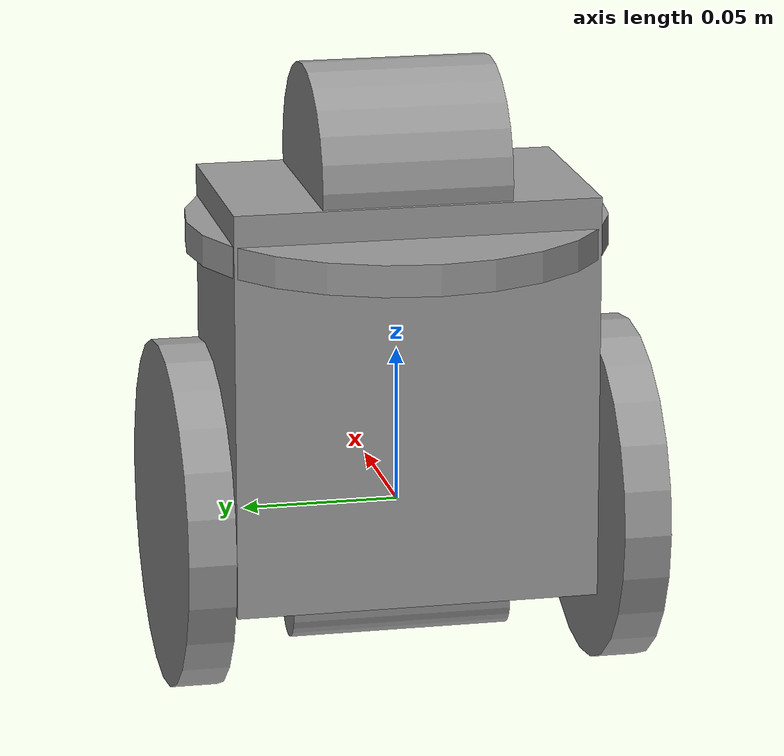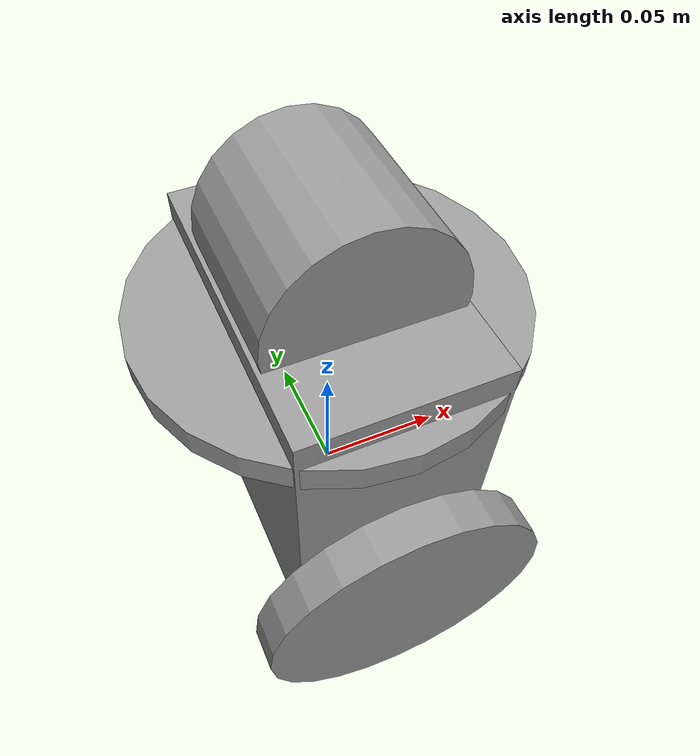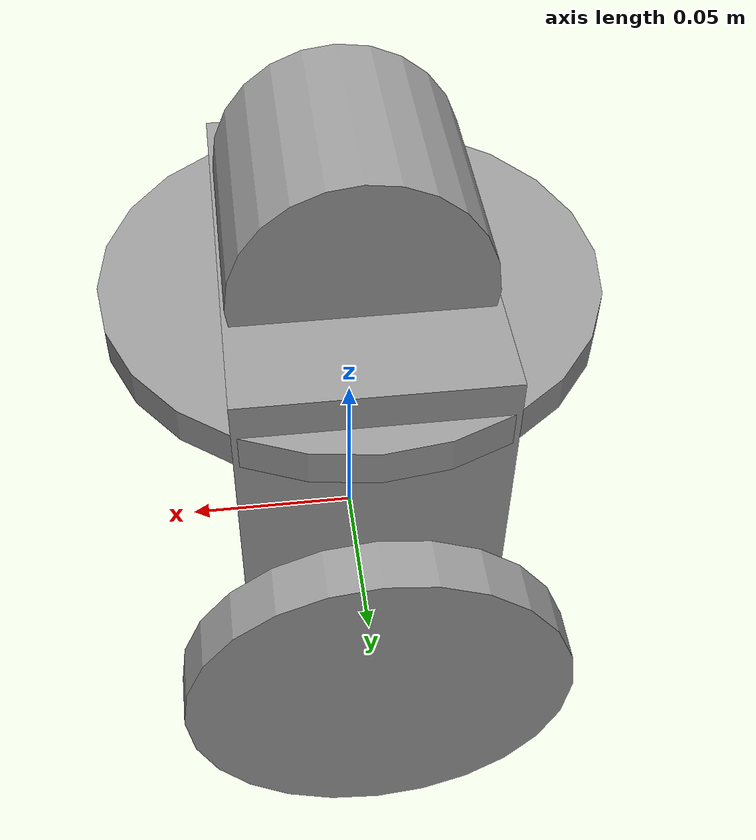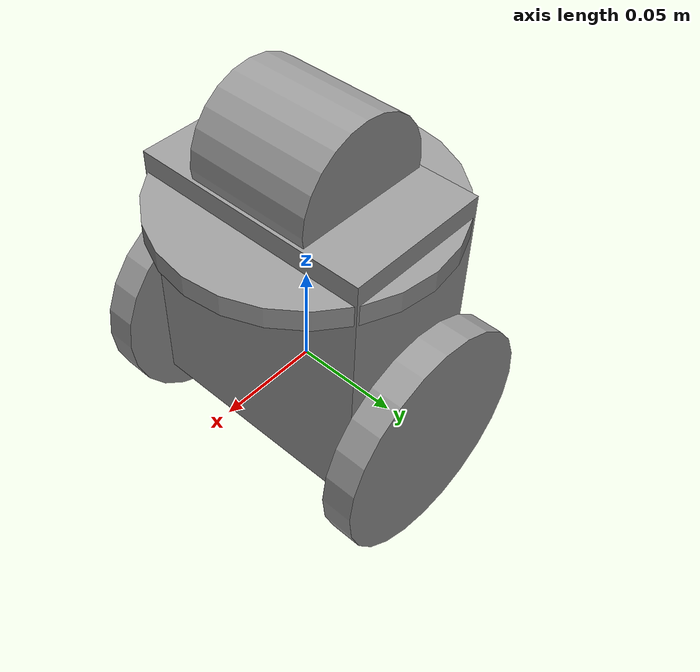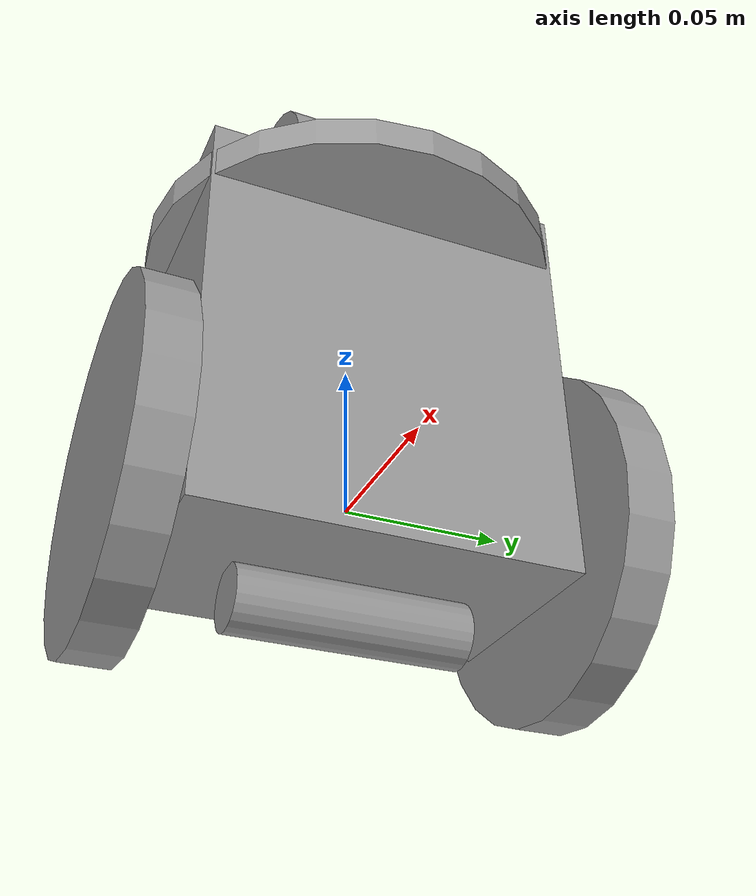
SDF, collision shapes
<?xml version='1.0'?>
<sdf version='1.7'>
  <model name='MiniRys4_2'>
    <link name='body'>
      <inertial>
        <mass>1.16182</mass>
        <inertia>
          <ixx>0.002939</ixx>
          <ixy>0</ixy>
          <ixz>0</ixz>
          <iyy>0.00211063</iyy>
          <iyz>0</iyz>
          <izz>0.00177719</izz>
        </inertia>
        <pose>0 0.000109 0.011152 0 -0 0</pose>
      </inertial>
      <pose>0 0 0 0 -0 0</pose>
      <gravity>1</gravity>
      <self_collide>0</self_collide>
      <kinematic>0</kinematic>
      <enable_wind>0</enable_wind>
      <visual name='visual'>
        <pose>-0.017 0 0 0 -0 0</pose>
        <geometry>
          <mesh>
            <uri>/home/mathew/ROS_files/meshes/body.stl</uri>
          </mesh>
        </geometry>
        <material>
          <lighting>1</lighting>
          <script>
            <uri>file://media/materials/scripts/gazebo.material</uri>
            <name>Gazebo/Grey</name>
          </script>
          <shader type='pixel'>
            <normal_map>__default__</normal_map>
          </shader>
          <ambient>0.3 0.3 0.3 1</ambient>
          <diffuse>0.7 0.7 0.7 1</diffuse>
          <specular>0.01 0.01 0.01 1</specular>
          <emissive>0 0 0 1</emissive>
        </material>
        <transparency>0</transparency>
        <cast_shadows>1</cast_shadows>
      </visual>
      <collision name='collision_2'>
        <laser_retro>0</laser_retro>
        <max_contacts>10</max_contacts>
        <pose>0 0 0.04 0 -0 0</pose>
        <geometry>
          <box>
            <size>0.07 0.116 0.13</size>
          </box>
        </geometry>
        <surface>
          <friction>
            <ode>
              <mu>0.1</mu>
              <mu2>0.1</mu2>
              <fdir1>0 0 0</fdir1>
              <slip1>0</slip1>
              <slip2>0</slip2>
            </ode>
            <torsional>
              <coefficient>1</coefficient>
              <patch_radius>0</patch_radius>
              <surface_radius>0</surface_radius>
              <use_patch_radius>1</use_patch_radius>
              <ode>
                <slip>0</slip>
              </ode>
            </torsional>
          </friction>
          <bounce>
            <restitution_coefficient>0</restitution_coefficient>
            <threshold>1e+06</threshold>
          </bounce>
          <contact>
            <collide_without_contact>0</collide_without_contact>
            <collide_without_contact_bitmask>1</collide_without_contact_bitmask>
            <collide_bitmask>1</collide_bitmask>
            <ode>
              <soft_cfm>0</soft_cfm>
              <soft_erp>0.2</soft_erp>
              <kp>1e+13</kp>
              <kd>1</kd>
              <max_vel>0.01</max_vel>
              <min_depth>0</min_depth>
            </ode>
            <bullet>
              <split_impulse>1</split_impulse>
              <split_impulse_penetration_threshold>-0.01</split_impulse_penetration_threshold>
              <soft_cfm>0</soft_cfm>
              <soft_erp>0.2</soft_erp>
              <kp>1e+13</kp>
              <kd>1</kd>
            </bullet>
          </contact>
        </surface>
      </collision>
      <collision name='collision_4'>
        <laser_retro>0</laser_retro>
        <max_contacts>10</max_contacts>
        <pose>0 0 0.09 0 -0 0</pose>
        <geometry>
          <cylinder>
            <radius>0.067</radius>
            <length>0.01</length>
          </cylinder>
        </geometry>
        <surface>
          <friction>
            <ode>
              <mu>0.1</mu>
              <mu2>0.1</mu2>
              <fdir1>0 0 0</fdir1>
              <slip1>0</slip1>
              <slip2>0</slip2>
            </ode>
            <torsional>
              <coefficient>1</coefficient>
              <patch_radius>0</patch_radius>
              <surface_radius>0</surface_radius>
              <use_patch_radius>1</use_patch_radius>
              <ode>
                <slip>0</slip>
              </ode>
            </torsional>
          </friction>
          <bounce>
            <restitution_coefficient>0</restitution_coefficient>
            <threshold>1e+06</threshold>
          </bounce>
          <contact>
            <collide_without_contact>0</collide_without_contact>
            <collide_without_contact_bitmask>1</collide_without_contact_bitmask>
            <collide_bitmask>1</collide_bitmask>
            <ode>
              <soft_cfm>0</soft_cfm>
              <soft_erp>0.2</soft_erp>
              <kp>1e+13</kp>
              <kd>1</kd>
              <max_vel>0.01</max_vel>
              <min_depth>0</min_depth>
            </ode>
            <bullet>
              <split_impulse>1</split_impulse>
              <split_impulse_penetration_threshold>-0.01</split_impulse_penetration_threshold>
              <soft_cfm>0</soft_cfm>
              <soft_erp>0.2</soft_erp>
              <kp>1e+13</kp>
              <kd>1</kd>
            </bullet>
          </contact>
        </surface>
      </collision>
      <collision name='collision_5'>
        <laser_retro>0</laser_retro>
        <max_contacts>10</max_contacts>
        <pose>0 0 -0.034 1.5708 -0 0</pose>
        <geometry>
          <cylinder>
            <radius>0.01</radius>
            <length>0.071</length>
          </cylinder>
        </geometry>
        <surface>
          <friction>
            <ode>
              <mu>0.1</mu>
              <mu2>0.1</mu2>
              <fdir1>0 0 0</fdir1>
              <slip1>0</slip1>
              <slip2>0</slip2>
            </ode>
            <torsional>
              <coefficient>1</coefficient>
              <patch_radius>0</patch_radius>
              <surface_radius>0</surface_radius>
              <use_patch_radius>1</use_patch_radius>
              <ode>
                <slip>0</slip>
              </ode>
            </torsional>
          </friction>
          <bounce>
            <restitution_coefficient>0</restitution_coefficient>
            <threshold>1e+06</threshold>
          </bounce>
          <contact>
            <collide_without_contact>0</collide_without_contact>
            <collide_without_contact_bitmask>1</collide_without_contact_bitmask>
            <collide_bitmask>1</collide_bitmask>
            <ode>
              <soft_cfm>0</soft_cfm>
              <soft_erp>0.2</soft_erp>
              <kp>1e+13</kp>
              <kd>1</kd>
              <max_vel>0.01</max_vel>
              <min_depth>0</min_depth>
            </ode>
            <bullet>
              <split_impulse>1</split_impulse>
              <split_impulse_penetration_threshold>-0.01</split_impulse_penetration_threshold>
              <soft_cfm>0</soft_cfm>
              <soft_erp>0.2</soft_erp>
              <kp>1e+13</kp>
              <kd>1</kd>
            </bullet>
          </contact>
        </surface>
      </collision>
      <collision name='collision_3'>
        <laser_retro>0</laser_retro>
        <max_contacts>10</max_contacts>
        <pose>0 0 0.11 1.5708 -0 0</pose>
        <geometry>
          <cylinder>
            <radius>0.034</radius>
            <length>0.06</length>
          </cylinder>
        </geometry>
        <surface>
          <friction>
            <ode>
              <mu>0.1</mu>
              <mu2>0.1</mu2>
              <fdir1>0 0 0</fdir1>
              <slip1>0</slip1>
              <slip2>0</slip2>
            </ode>
            <torsional>
              <coefficient>1</coefficient>
              <patch_radius>0</patch_radius>
              <surface_radius>0</surface_radius>
              <use_patch_radius>1</use_patch_radius>
              <ode>
                <slip>0</slip>
              </ode>
            </torsional>
          </friction>
          <bounce>
            <restitution_coefficient>0</restitution_coefficient>
            <threshold>1e+06</threshold>
          </bounce>
          <contact>
            <collide_without_contact>0</collide_without_contact>
            <collide_without_contact_bitmask>1</collide_without_contact_bitmask>
            <collide_bitmask>1</collide_bitmask>
            <ode>
              <soft_cfm>0</soft_cfm>
              <soft_erp>0.2</soft_erp>
              <kp>1e+13</kp>
              <kd>1</kd>
              <max_vel>0.01</max_vel>
              <min_depth>0</min_depth>
            </ode>
            <bullet>
              <split_impulse>1</split_impulse>
              <split_impulse_penetration_threshold>-0.01</split_impulse_penetration_threshold>
              <soft_cfm>0</soft_cfm>
              <soft_erp>0.2</soft_erp>
              <kp>1e+13</kp>
              <kd>1</kd>
            </bullet>
          </contact>
        </surface>
      </collision>
    </link>
    <link name='leftwheel'>
      <inertial>
        <mass>0.170328</mass>
        <inertia>
          <ixx>0.00013418</ixx>
          <ixy>0</ixy>
          <ixz>0</ixz>
          <iyy>0.00013418</iyy>
          <iyz>0</iyz>
          <izz>0.00026198</izz>
        </inertia>
        <pose>0 0 0 0 -0 0</pose>
      </inertial>
      <pose>0 0.069 0 0 -0 0</pose>
      <gravity>1</gravity>
      <self_collide>0</self_collide>
      <kinematic>0</kinematic>
      <enable_wind>0</enable_wind>
      <visual name='visual'>
        <pose>-0.055463 -0.005 -0.055463 0 -0 0</pose>
        <geometry>
          <mesh>
            <uri>/home/mathew/ROS_files/meshes/rimtire.STL</uri>
          </mesh>
        </geometry>
        <material>
          <lighting>1</lighting>
          <script>
            <uri>file://media/materials/scripts/gazebo.material</uri>
            <name>Gazebo/Grey</name>
          </script>
          <shader type='pixel'>
            <normal_map>__default__</normal_map>
          </shader>
          <ambient>0.3 0.3 0.3 1</ambient>
          <diffuse>0.7 0.7 0.7 1</diffuse>
          <specular>0.01 0.01 0.01 1</specular>
          <emissive>0 0 0 1</emissive>
        </material>
        <transparency>0</transparency>
        <cast_shadows>1</cast_shadows>
      </visual>
      <collision name='collision_2'>
        <laser_retro>0</laser_retro>
        <max_contacts>10</max_contacts>
        <pose>0 0 0 1.5708 -0 0</pose>
        <geometry>
          <cylinder>
            <radius>0.055463</radius>
            <length>0.015</length>
          </cylinder>
        </geometry>
        <surface>
          <friction>
            <ode>
              <mu>1</mu>
              <mu2>1</mu2>
              <fdir1>0 0 0</fdir1>
              <slip1>0</slip1>
              <slip2>0</slip2>
            </ode>
            <torsional>
              <coefficient>1</coefficient>
              <patch_radius>0</patch_radius>
              <surface_radius>0</surface_radius>
              <use_patch_radius>1</use_patch_radius>
              <ode>
                <slip>0</slip>
              </ode>
            </torsional>
          </friction>
          <bounce>
            <restitution_coefficient>0</restitution_coefficient>
            <threshold>1e+06</threshold>
          </bounce>
          <contact>
            <collide_without_contact>0</collide_without_contact>
            <collide_without_contact_bitmask>1</collide_without_contact_bitmask>
            <collide_bitmask>1</collide_bitmask>
            <ode>
              <soft_cfm>0</soft_cfm>
              <soft_erp>0.2</soft_erp>
              <kp>1e+13</kp>
              <kd>1</kd>
              <max_vel>0.01</max_vel>
              <min_depth>0</min_depth>
            </ode>
            <bullet>
              <split_impulse>1</split_impulse>
              <split_impulse_penetration_threshold>-0.01</split_impulse_penetration_threshold>
              <soft_cfm>0</soft_cfm>
              <soft_erp>0.2</soft_erp>
              <kp>1e+13</kp>
              <kd>1</kd>
            </bullet>
          </contact>
        </surface>
      </collision>
    </link>
    <link name='rightwheel'>
      <inertial>
        <mass>0.170328</mass>
        <inertia>
          <ixx>0.00013418</ixx>
          <ixy>0</ixy>
          <ixz>0</ixz>
          <iyy>0.00013418</iyy>
          <iyz>0</iyz>
          <izz>0.00026198</izz>
        </inertia>
        <pose>0 0 0 0 -0 0</pose>
      </inertial>
      <pose>0 -0.069 0 0 -0 0</pose>
      <gravity>1</gravity>
      <self_collide>0</self_collide>
      <kinematic>0</kinematic>
      <enable_wind>0</enable_wind>
      <visual name='visual'>
        <pose>0.055463 0.005 -0.055463 0 -0 3.14159</pose>
        <geometry>
          <mesh>
            <uri>/home/mathew/ROS_files/meshes/rimtire.STL</uri>
          </mesh>
        </geometry>
        <material>
          <lighting>1</lighting>
          <script>
            <uri>file://media/materials/scripts/gazebo.material</uri>
            <name>Gazebo/Grey</name>
          </script>
          <shader type='pixel'>
            <normal_map>__default__</normal_map>
          </shader>
          <ambient>0.3 0.3 0.3 1</ambient>
          <diffuse>0.7 0.7 0.7 1</diffuse>
          <specular>0.01 0.01 0.01 1</specular>
          <emissive>0 0 0 1</emissive>
        </material>
        <transparency>0</transparency>
        <cast_shadows>1</cast_shadows>
      </visual>
      <collision name='collision_1'>
        <laser_retro>0</laser_retro>
        <max_contacts>10</max_contacts>
        <pose>0 0 0 1.5708 -0 0</pose>
        <geometry>
          <cylinder>
            <radius>0.055463</radius>
            <length>0.015</length>
          </cylinder>
        </geometry>
        <surface>
          <friction>
            <ode>
              <mu>1</mu>
              <mu2>1</mu2>
              <fdir1>0 0 0</fdir1>
              <slip1>0</slip1>
              <slip2>0</slip2>
            </ode>
            <torsional>
              <coefficient>1</coefficient>
              <patch_radius>0</patch_radius>
              <surface_radius>0</surface_radius>
              <use_patch_radius>1</use_patch_radius>
              <ode>
                <slip>0</slip>
              </ode>
            </torsional>
          </friction>
          <bounce>
            <restitution_coefficient>0</restitution_coefficient>
            <threshold>1e+06</threshold>
          </bounce>
          <contact>
            <collide_without_contact>0</collide_without_contact>
            <collide_without_contact_bitmask>1</collide_without_contact_bitmask>
            <collide_bitmask>1</collide_bitmask>
            <ode>
              <soft_cfm>0</soft_cfm>
              <soft_erp>0.2</soft_erp>
              <kp>1e+13</kp>
              <kd>1</kd>
              <max_vel>0.01</max_vel>
              <min_depth>0</min_depth>
            </ode>
            <bullet>
              <split_impulse>1</split_impulse>
              <split_impulse_penetration_threshold>-0.01</split_impulse_penetration_threshold>
              <soft_cfm>0</soft_cfm>
              <soft_erp>0.2</soft_erp>
              <kp>1e+13</kp>
              <kd>1</kd>
            </bullet>
          </contact>
        </surface>
      </collision>
    </link>
    <joint name='body_JOINT_0' type='revolute'>
      <parent>body</parent>
      <child>rightwheel</child>
      <pose>0 0 0 0 -0 0</pose>
      <axis>
        <xyz>0 -1 0</xyz>
        <limit>
          <lower>-1.79769e+308</lower>
          <upper>1.79769e+308</upper>
          <effort>-1</effort>
          <velocity>-1</velocity>
        </limit>
        <dynamics>
          <spring_reference>0</spring_reference>
          <spring_stiffness>0</spring_stiffness>
          <damping>0</damping>
          <friction>0</friction>
        </dynamics>
      </axis>
      <physics>
        <ode>
          <limit>
            <cfm>0</cfm>
            <erp>0.2</erp>
          </limit>
          <suspension>
            <cfm>0</cfm>
            <erp>0.2</erp>
          </suspension>
        </ode>
      </physics>
    </joint>
    <joint name='body_JOINT_2' type='revolute'>
      <parent>body</parent>
      <child>leftwheel</child>
      <pose>0 0 0 0 -0 0</pose>
      <axis>
        <xyz>0 -1 0</xyz>
        <limit>
          <lower>-1.79769e+308</lower>
          <upper>1.79769e+308</upper>
          <effort>-1</effort>
          <velocity>-1</velocity>
        </limit>
        <dynamics>
          <spring_reference>0</spring_reference>
          <spring_stiffness>0</spring_stiffness>
          <damping>0</damping>
          <friction>0</friction>
        </dynamics>
      </axis>
      <physics>
        <ode>
          <limit>
            <cfm>0</cfm>
            <erp>0.2</erp>
          </limit>
          <suspension>
            <cfm>0</cfm>
            <erp>0.2</erp>
          </suspension>
        </ode>
      </physics>
    </joint>
    <static>0</static>
    <allow_auto_disable>0</allow_auto_disable>
    <plugin name='diff_drive' filename='libgazebo_ros_diff_drive.so'>
      <ros>
        <namespace>/MiniRysv4_1</namespace>
        <remapping>cmd_vel:=cmd</remapping>
        <remapping>odom:=odom</remapping>
      </ros>
      <left_joint>body_JOINT_2</left_joint>
      <right_joint>body_JOINT_0</right_joint>
      <wheel_separation>0.124</wheel_separation>
      <wheel_diameter>0.111</wheel_diameter>
      <max_wheel_torque>5</max_wheel_torque>
      <max_wheel_acceleration>15.0</max_wheel_acceleration>
      <publish_odom>1</publish_odom>
      <publish_odom_tf>1</publish_odom_tf>
      <publish_wheel_tf>1</publish_wheel_tf>
      <odometry_frame>odom</odometry_frame>
      <robot_base_frame>link_0</robot_base_frame>
    </plugin>
  </model>
</sdf>
